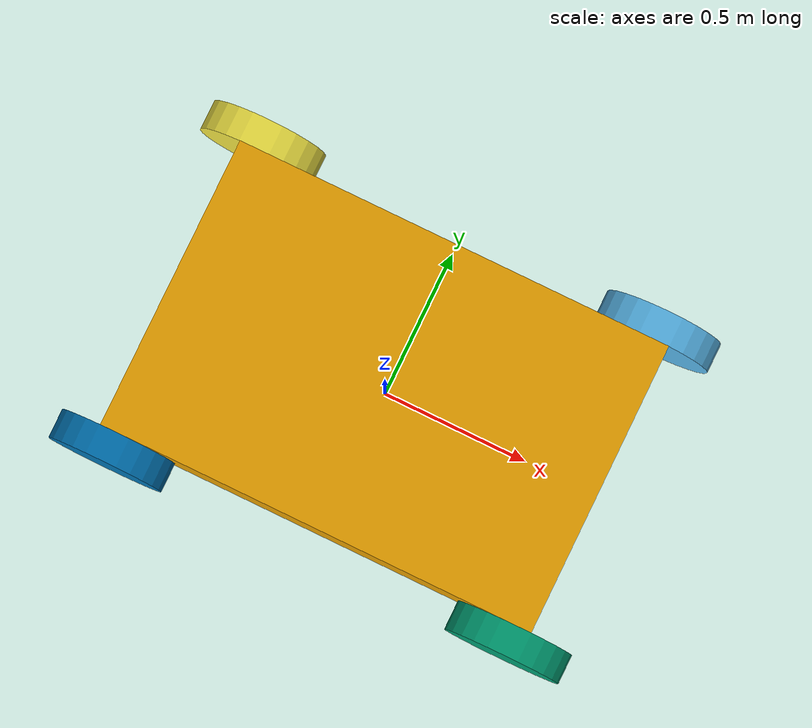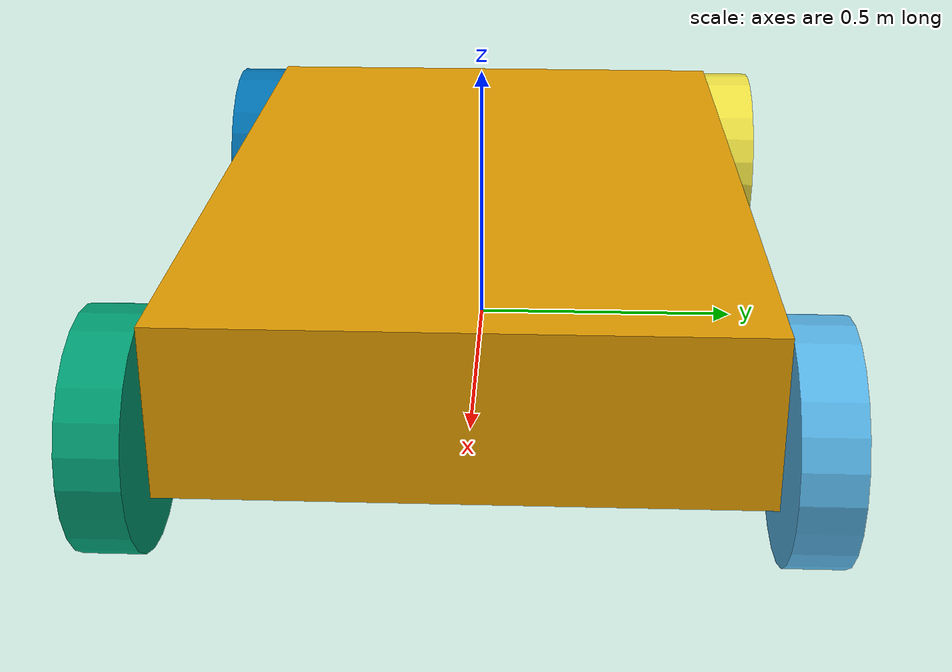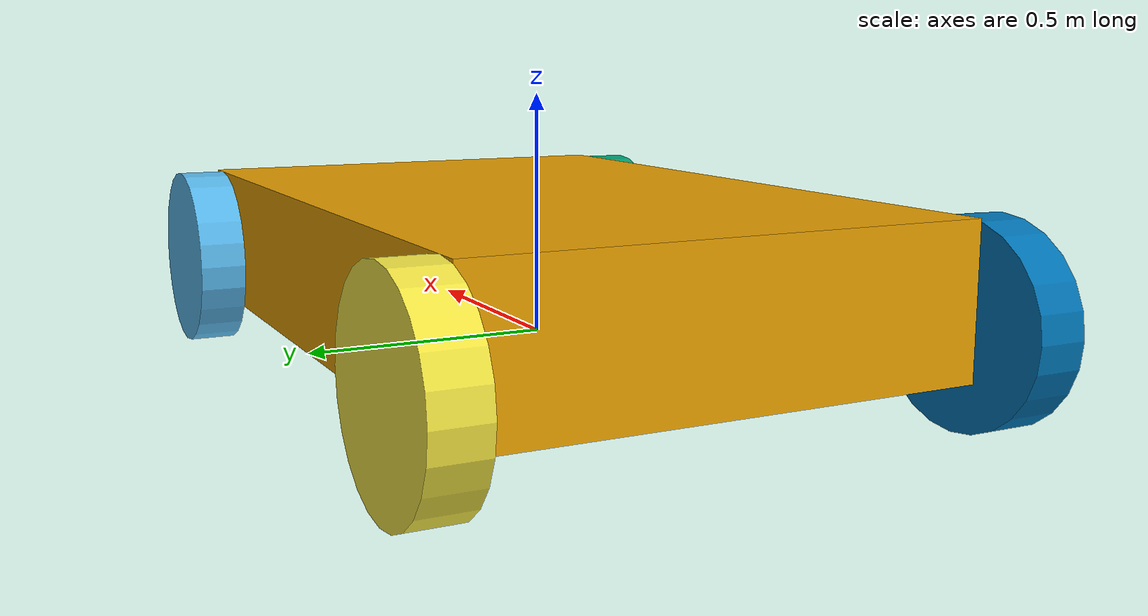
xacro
<?xml version="1.0"?>
<robot name="four_wheel_car" xmlns:xacro="http://www.ros.org/wiki/xacro">

  <!-- Define properties for reusability -->
  <xacro:property name="wheel_radius" value="0.2"/>
  <xacro:property name="wheel_width" value="0.1"/>
  <xacro:property name="body_length" value="1.5"/>
  <xacro:property name="body_width" value="1.0"/>
  <xacro:property name="body_height" value="0.3"/>
  <xacro:property name="wheel_offset_x" value="0.7"/>
  <xacro:property name="wheel_offset_y" value="0.55"/>
  <xacro:property name="wheel_z" value="0.1"/>

  <!-- Base Link -->
  <link name="base_link">
    <inertial>
      <origin xyz="0 0 0" rpy="0 0 0"/>
      <mass value="5.0"/>
      <inertia ixx="0.1" ixy="0.0" ixz="0.0"
               iyy="0.1" iyz="0.0"
               izz="0.1"/>
    </inertial>
    <visual>
      <origin xyz="0 0 ${body_height/2}" rpy="0 0 0"/>
      <geometry>
        <box size="${body_length} ${body_width} ${body_height}"/>
      </geometry>
    </visual>
    <collision>
      <origin xyz="0 0 ${body_height/2}" rpy="0 0 0"/>
      <geometry>
        <box size="${body_length} ${body_width} ${body_height}"/>
      </geometry>
    </collision>
  </link>

  <!-- Define a wheel macro with orientation -->
  <xacro:macro name="wheel" params="name x y">
    <joint name="${name}_joint" type="continuous">
      <parent link="base_link"/>
      <child link="${name}_link"/>
      <origin xyz="${x} ${y} ${wheel_z}" rpy="0 0 0"/>
      <axis xyz="0 1 0"/>  <!-- Fix rotation axis to Y-axis -->
    </joint>

    <link name="${name}_link">
      <inertial>
        <origin xyz="0 0 0" rpy="0 0 0"/>
        <mass value="0.5"/>
        <inertia ixx="0.01" ixy="0.0" ixz="0.0"
                 iyy="0.01" iyz="0.0"
                 izz="0.01"/>
      </inertial>
      <visual>
        <origin xyz="0 0 0" rpy="1.5708 0 0"/> <!-- Correct visual orientation -->
        <geometry>
          <cylinder length="${wheel_width}" radius="${wheel_radius}"/>
        </geometry>
      </visual>
      <collision>
        <origin xyz="0 0 0" rpy="1.5708 0 0"/> <!-- Correct collision orientation -->
        <geometry>
          <cylinder length="${wheel_width}" radius="${wheel_radius}"/>
        </geometry>
      </collision>
    </link>
  </xacro:macro>

  <!-- Create 4 wheels -->
  <xacro:wheel name="front_left_wheel" x="${wheel_offset_x}" y="${wheel_offset_y}"/>
  <xacro:wheel name="front_right_wheel" x="${wheel_offset_x}" y="-${wheel_offset_y}"/>
  <xacro:wheel name="rear_left_wheel" x="-${wheel_offset_x}" y="${wheel_offset_y}"/>
  <xacro:wheel name="rear_right_wheel" x="-${wheel_offset_x}" y="-${wheel_offset_y}"/>

  <!-- Transmission for ROS control -->
  <xacro:macro name="wheel_transmission" params="name">
    <transmission name="${name}_transmission">
      <type>transmission_interface/SimpleTransmission</type>
      <joint name="${name}_joint">
        <hardwareInterface>hardware_interface/PositionJointInterface</hardwareInterface>
      </joint>
      <actuator name="${name}_motor">
        <hardwareInterface>hardware_interface/PositionJointInterface</hardwareInterface>
      </actuator>
    </transmission>
  </xacro:macro>

  <!-- Add Transmissions -->
  <xacro:wheel_transmission name="front_left_wheel"/>
  <xacro:wheel_transmission name="front_right_wheel"/>
  <xacro:wheel_transmission name="rear_left_wheel"/>
  <xacro:wheel_transmission name="rear_right_wheel"/>

  <!-- Gazebo Plugins -->
  <gazebo>
    <plugin name="gazebo_ros_control" filename="libgazebo_ros_control.so"/>
  </gazebo>

</robot>
